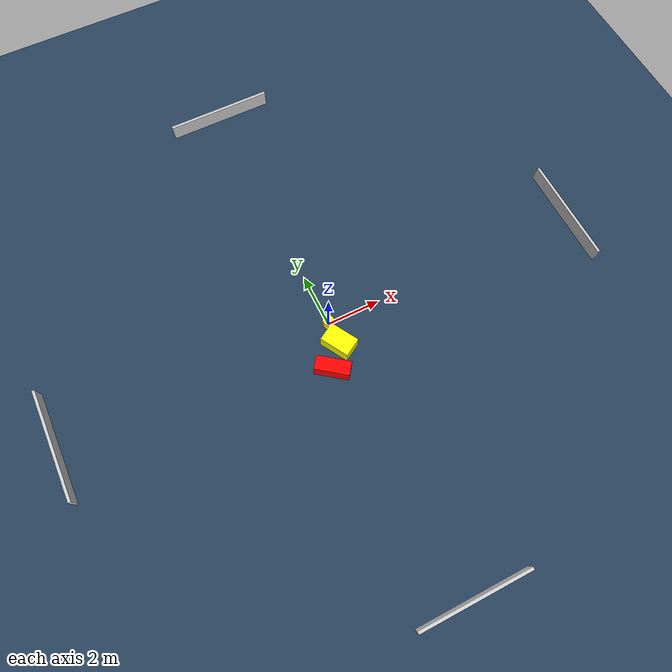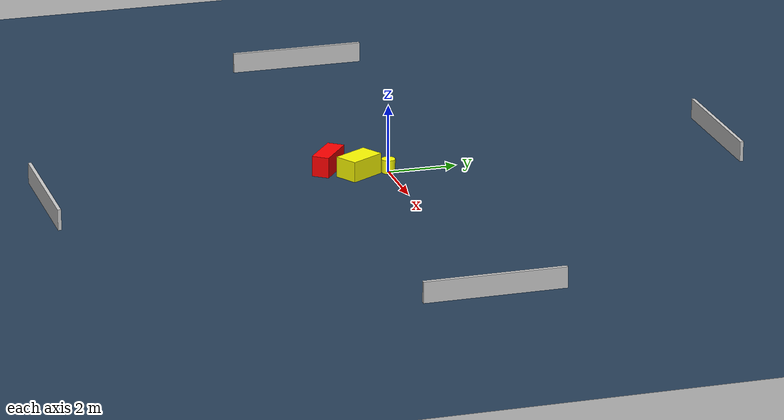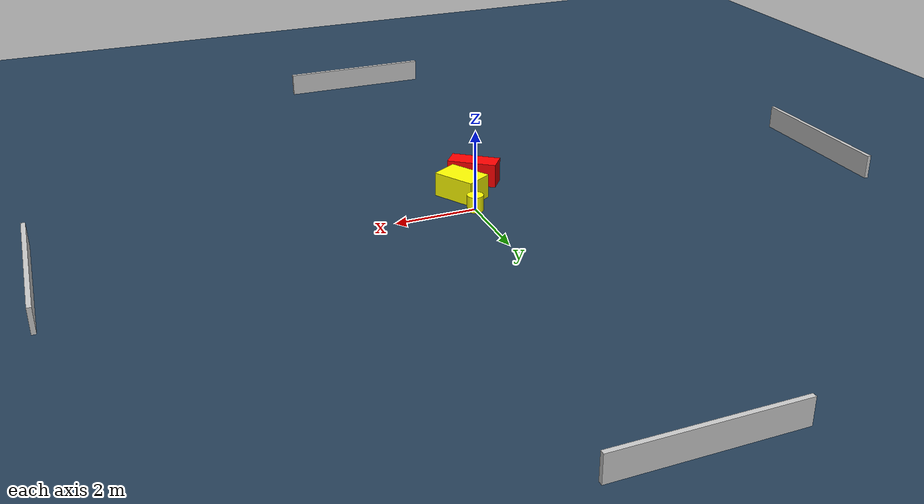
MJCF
<?xml version="1.0" ?>
<mujoco model="generated_environment">
  <option timestep="0.01" integrator="RK4" cone="elliptic"/>
  <default>
    <geom density="1"/>
  </default>
  <asset>
    <texture builtin="gradient" height="3072" name="skybox" rgb1="0.3 0.5 0.7" rgb2="0 0 0" type="skybox" width="512"/>
    <texture builtin="checker" height="300" name="groundplane" rgb1="0.2 0.3 0.4" rgb2="0.1 0.2 0.3" type="2d" width="300"/>
    <material name="groundplane" reflectance="0.2" texrepeat="5 5" texture="groundplane"/>
  </asset>
  <worldbody>
    <light dir="0 0 -1" directional="true" pos="0 0 1.5"/>
    <geom condim="3" friction="0.5 0.005 0.001" material="groundplane" name="floor" pos="0 0 0" size="0 0 0.05" type="plane"/>
    <body name="walls">
      <geom name="wall_1" condim="4" pos="-10.0 0.0 0.3" rgba="0.800000011920929 0.800000011920929 0.800000011920929 1.0" size="0.05 2.0 0.3" type="box"/>
      <geom name="wall_2" condim="4" pos="10.0 0.0 0.3" rgba="0.800000011920929 0.800000011920929 0.800000011920929 1.0" size="0.05 2.0 0.3" type="box"/>
      <geom name="wall_3" condim="4" pos="0.0 -10.0 0.3" rgba="0.800000011920929 0.800000011920929 0.800000011920929 1.0" size="2.0 0.05 0.3" type="box"/>
      <geom name="wall_4" condim="4" pos="0.0 10.0 0.3" rgba="0.800000011920929 0.800000011920929 0.800000011920929 1.0" size="2.0 0.05 0.3" type="box"/>
    </body>
    <body name="robot">
      <joint name="joint_x" type="slide" pos="0 0 0" axis="1 0 0"/>
      <joint name="joint_y" type="slide" pos="0 0 0" axis="0 1 0"/>
      <geom name="robot" type="cylinder" pos="0.0 0.0 0.2" size="0.2 0.2 0.0" mass="5.0" friction="1.0 0.005 0.0001" condim="4" rgba="1.0 1.0 0.0 1.0"/>
    </body>
    <body name="obstacle_1_movable">
      <geom name="obstacle_1_movable" condim="4" pos="-0.00036726228629444484 -0.8694983265430777 0.3" euler="0 0 210.57152044572155" friction="0.0 0.005 0.001" rgba="1.0 1.0 0.0 1.0" size="0.3533239518727988 0.5497131660483814 0.3" type="box" mass="0.1"/>
      <joint type="free"/>
    </body>
    <body name="obstacle_2_static">
      <geom name="obstacle_2_static" condim="4" pos="-0.6190847747877789 -1.6087190521084935 0.3" euler="0 0 323.1034850417966" friction="0.0 0.005 0.001" rgba="1.0 0.0 0.0 1.0" size="0.6195975843615087 0.25356573374034624 0.3" type="box"/>
    </body>
  </worldbody>
  <actuator>
    <motor name="actuator_x" joint="joint_x" gear="1" ctrlrange="-1 1"/>
    <motor name="actuator_y" joint="joint_y" gear="1" ctrlrange="-1 1"/>
  </actuator>
</mujoco>
